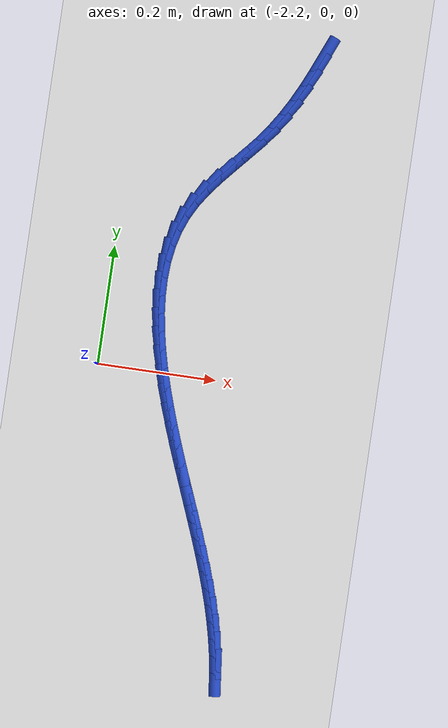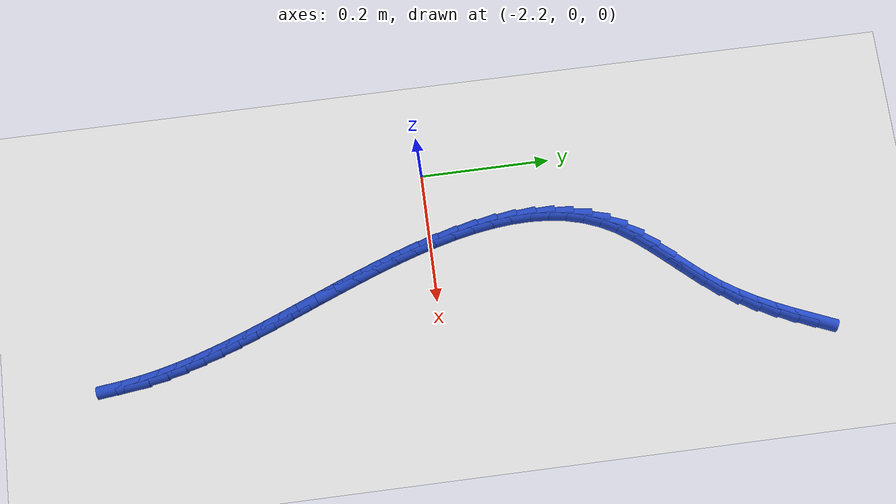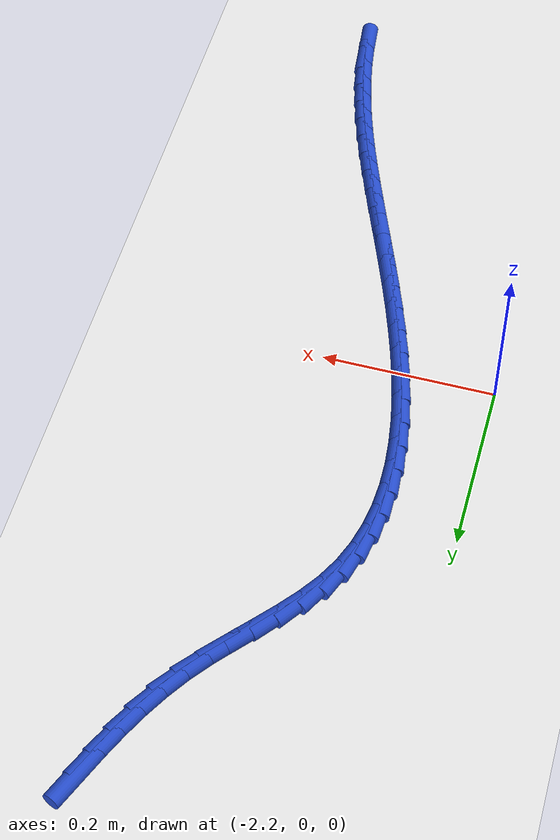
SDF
<sdf version="1.6">
 <world name="default">
  <model name="ground_plane">
   <static>1</static>
   <link name="link">
    <collision name="collision">
     <geometry><plane><normal>0 0 1</normal><size>100 100</size></plane></geometry>
     <surface><friction><ode><mu>100</mu><mu2>50</mu2></ode></friction></surface>
    </collision>
    <visual name="visual">
     <cast_shadows>0</cast_shadows>
     <geometry><plane><normal>0 0 1</normal><size>100 100</size></plane></geometry>
     <material>
      <script><uri>file://media/materials/scripts/gazebo.material</uri><name>Gazebo/WhiteGlow</name></script>
     </material>
    </visual>
   </link>
  </model>
  <model name="line">
   <link name="link_95">
    <pose>-1.899186423760416 0.5612984578605097 0.01 0 1.57 1.1766219724261486</pose>
    <collision name="collision">
     <geometry><cylinder><radius>0.01</radius><length>0.08</length></cylinder></geometry>
    </collision>
    <visual name="visual">
     <material>
      <script><name>Gazebo/Blue</name><uri>file://media/materials/scripts/gazebo.material</uri></script>
     </material>
     <geometry><cylinder><radius>0.01</radius><length>0.08</length></cylinder></geometry>
    </visual>
   </link>
   <link name="link_96">
    <pose>-1.910627675248279 0.5337916811733712 0.01 0 1.57 1.1466370961429673</pose>
    <collision name="collision">
     <geometry><cylinder><radius>0.01</radius><length>0.08</length></cylinder></geometry>
    </collision>
    <visual name="visual">
     <material>
      <script><name>Gazebo/Blue</name><uri>file://media/materials/scripts/gazebo.material</uri></script>
     </material>
     <geometry><cylinder><radius>0.01</radius><length>0.08</length></cylinder></geometry>
    </visual>
   </link>
   <link name="link_97">
    <pose>-1.9228658939906695 0.5066902267372222 0.01 0 1.57 1.1056456189767359</pose>
    <collision name="collision">
     <geometry><cylinder><radius>0.01</radius><length>0.08</length></cylinder></geometry>
    </collision>
    <visual name="visual">
     <material>
      <script><name>Gazebo/Blue</name><uri>file://media/materials/scripts/gazebo.material</uri></script>
     </material>
     <geometry><cylinder><radius>0.01</radius><length>0.08</length></cylinder></geometry>
    </visual>
   </link>
   <link name="link_98">
    <pose>-1.9361793073973819 0.48016315698920364 0.01 0 1.57 1.0536014409159482</pose>
    <collision name="collision">
     <geometry><cylinder><radius>0.01</radius><length>0.08</length></cylinder></geometry>
    </collision>
    <visual name="visual">
     <material>
      <script><name>Gazebo/Blue</name><uri>file://media/materials/scripts/gazebo.material</uri></script>
     </material>
     <geometry><cylinder><radius>0.01</radius><length>0.08</length></cylinder></geometry>
    </visual>
   </link>
   <link name="link_99">
    <pose>-1.9508461428782102 0.45437953436645706 0.01 0 1.57 0.9906917847899174</pose>
    <collision name="collision">
     <geometry><cylinder><radius>0.01</radius><length>0.08</length></cylinder></geometry>
    </collision>
    <visual name="visual">
     <material>
      <script><name>Gazebo/Blue</name><uri>file://media/materials/scripts/gazebo.material</uri></script>
     </material>
     <geometry><cylinder><radius>0.01</radius><length>0.08</length></cylinder></geometry>
    </visual>
   </link>
   <link name="link_100">
    <pose>-1.967144627842949 0.429508421306125 0.01 0 1.57 0.9204145990524364</pose>
    <collision name="collision">
     <geometry><cylinder><radius>0.01</radius><length>0.08</length></cylinder></geometry>
    </collision>
    <visual name="visual">
     <material>
      <script><name>Gazebo/Blue</name><uri>file://media/materials/scripts/gazebo.material</uri></script>
     </material>
     <geometry><cylinder><radius>0.01</radius><length>0.08</length></cylinder></geometry>
    </visual>
   </link>
   <link name="link_101">
    <pose>-1.9852731699350736 0.4056803751331991 0.01 0 1.57 0.868555260778277</pose>
    <collision name="collision">
     <geometry><cylinder><radius>0.01</radius><length>0.08</length></cylinder></geometry>
    </collision>
    <visual name="visual">
     <material>
      <script><name>Gazebo/Blue</name><uri>file://media/materials/scripts/gazebo.material</uri></script>
     </material>
     <geometry><cylinder><radius>0.01</radius><length>0.08</length></cylinder></geometry>
    </visual>
   </link>
   <link name="link_102">
    <pose>-2.0047282048209834 0.3826873213907298 0.01 0 1.57 0.8472326331899819</pose>
    <collision name="collision">
     <geometry><cylinder><radius>0.01</radius><length>0.08</length></cylinder></geometry>
    </collision>
    <visual name="visual">
     <material>
      <script><name>Gazebo/Blue</name><uri>file://media/materials/scripts/gazebo.material</uri></script>
     </material>
     <geometry><cylinder><radius>0.01</radius><length>0.08</length></cylinder></geometry>
    </visual>
   </link>
   <link name="link_103">
    <pose>-2.0246416333457162 0.3601453337641844 0.01 0 1.57 0.8561693579745446</pose>
    <collision name="collision">
     <geometry><cylinder><radius>0.01</radius><length>0.08</length></cylinder></geometry>
    </collision>
    <visual name="visual">
     <material>
      <script><name>Gazebo/Blue</name><uri>file://media/materials/scripts/gazebo.material</uri></script>
     </material>
     <geometry><cylinder><radius>0.01</radius><length>0.08</length></cylinder></geometry>
    </visual>
   </link>
   <link name="link_104">
    <pose>-2.0441422501063418 0.3376689874828005 0.01 0 1.57 0.896598721229193</pose>
    <collision name="collision">
     <geometry><cylinder><radius>0.01</radius><length>0.08</length></cylinder></geometry>
    </collision>
    <visual name="visual">
     <material>
      <script><name>Gazebo/Blue</name><uri>file://media/materials/scripts/gazebo.material</uri></script>
     </material>
     <geometry><cylinder><radius>0.01</radius><length>0.08</length></cylinder></geometry>
    </visual>
   </link>
   <link name="link_105">
    <pose>-2.062358849699933 0.3148728577758145 0.01 0 1.57 0.9712820767100098</pose>
    <collision name="collision">
     <geometry><cylinder><radius>0.01</radius><length>0.08</length></cylinder></geometry>
    </collision>
    <visual name="visual">
     <material>
      <script><name>Gazebo/Blue</name><uri>file://media/materials/scripts/gazebo.material</uri></script>
     </material>
     <geometry><cylinder><radius>0.01</radius><length>0.08</length></cylinder></geometry>
    </visual>
   </link>
   <link name="link_106">
    <pose>-2.078420226723561 0.29137151987246385 0.01 0 1.57 1.0814692834008968</pose>
    <collision name="collision">
     <geometry><cylinder><radius>0.01</radius><length>0.08</length></cylinder></geometry>
    </collision>
    <visual name="visual">
     <material>
      <script><name>Gazebo/Blue</name><uri>file://media/materials/scripts/gazebo.material</uri></script>
     </material>
     <geometry><cylinder><radius>0.01</radius><length>0.08</length></cylinder></geometry>
    </visual>
   </link>
   <link name="link_107">
    <pose>-2.0915040603044606 0.2668020496699052 0.01 0 1.57 1.2033799885313878</pose>
    <collision name="collision">
     <geometry><cylinder><radius>0.01</radius><length>0.08</length></cylinder></geometry>
    </collision>
    <visual name="visual">
     <material>
      <script><name>Gazebo/Blue</name><uri>file://media/materials/scripts/gazebo.material</uri></script>
     </material>
     <geometry><cylinder><radius>0.01</radius><length>0.08</length></cylinder></geometry>
    </visual>
   </link>
   <link name="link_108">
    <pose>-2.101402620724357 0.24108440829356903 0.01 0 1.57 1.317495490033172</pose>
    <collision name="collision">
     <geometry><cylinder><radius>0.01</radius><length>0.08</length></cylinder></geometry>
    </collision>
    <visual name="visual">
     <material>
      <script><name>Gazebo/Blue</name><uri>file://media/materials/scripts/gazebo.material</uri></script>
     </material>
     <geometry><cylinder><radius>0.01</radius><length>0.08</length></cylinder></geometry>
    </visual>
   </link>
   <link name="link_109">
    <pose>-2.1083278463666155 0.21433172253009608 0.01 0 1.57 1.421153237449367</pose>
    <collision name="collision">
     <geometry><cylinder><radius>0.01</radius><length>0.08</length></cylinder></geometry>
    </collision>
    <visual name="visual">
     <material>
      <script><name>Gazebo/Blue</name><uri>file://media/materials/scripts/gazebo.material</uri></script>
     </material>
     <geometry><cylinder><radius>0.01</radius><length>0.08</length></cylinder></geometry>
    </visual>
   </link>
   <link name="link_110">
    <pose>-2.1124997881623857 0.1866608532256145 0.01 0 1.57 1.513305037192407</pose>
    <collision name="collision">
     <geometry><cylinder><radius>0.01</radius><length>0.08</length></cylinder></geometry>
    </collision>
    <visual name="visual">
     <material>
      <script><name>Gazebo/Blue</name><uri>file://media/materials/scripts/gazebo.material</uri></script>
     </material>
     <geometry><cylinder><radius>0.01</radius><length>0.08</length></cylinder></geometry>
    </visual>
   </link>
   <link name="link_111">
    <pose>-2.114138497042818 0.15818866122625366 0.01 0 1.57 -1.547667718240837</pose>
    <collision name="collision">
     <geometry><cylinder><radius>0.01</radius><length>0.08</length></cylinder></geometry>
    </collision>
    <visual name="visual">
     <material>
      <script><name>Gazebo/Blue</name><uri>file://media/materials/scripts/gazebo.material</uri></script>
     </material>
     <geometry><cylinder><radius>0.01</radius><length>0.08</length></cylinder></geometry>
    </visual>
   </link>
   <link name="link_112">
    <pose>-2.113464023939061 0.12903200737814152 0.01 0 1.57 -1.4779547147992482</pose>
    <collision name="collision">
     <geometry><cylinder><radius>0.01</radius><length>0.08</length></cylinder></geometry>
    </collision>
    <visual name="visual">
     <material>
      <script><name>Gazebo/Blue</name><uri>file://media/materials/scripts/gazebo.material</uri></script>
     </material>
     <geometry><cylinder><radius>0.01</radius><length>0.08</length></cylinder></geometry>
    </visual>
   </link>
   <link name="link_113">
    <pose>-2.110696419782265 0.09930775252740766 0.01 0 1.57 -1.4181995299906758</pose>
    <collision name="collision">
     <geometry><cylinder><radius>0.01</radius><length>0.08</length></cylinder></geometry>
    </collision>
    <visual name="visual">
     <material>
      <script><name>Gazebo/Blue</name><uri>file://media/materials/scripts/gazebo.material</uri></script>
     </material>
     <geometry><cylinder><radius>0.01</radius><length>0.08</length></cylinder></geometry>
    </visual>
   </link>
   <link name="link_114">
    <pose>-2.1060557355035794 0.06913275752018008 0.01 0 1.57 -1.3673588825222784</pose>
    <collision name="collision">
     <geometry><cylinder><radius>0.01</radius><length>0.08</length></cylinder></geometry>
    </collision>
    <visual name="visual">
     <material>
      <script><name>Gazebo/Blue</name><uri>file://media/materials/scripts/gazebo.material</uri></script>
     </material>
     <geometry><cylinder><radius>0.01</radius><length>0.08</length></cylinder></geometry>
    </visual>
   </link>
   <link name="link_115">
    <pose>-2.0997620220341537 0.03862388320258825 0.01 0 1.57 -1.3244330379718854</pose>
    <collision name="collision">
     <geometry><cylinder><radius>0.01</radius><length>0.08</length></cylinder></geometry>
    </collision>
    <visual name="visual">
     <material>
      <script><name>Gazebo/Blue</name><uri>file://media/materials/scripts/gazebo.material</uri></script>
     </material>
     <geometry><cylinder><radius>0.01</radius><length>0.08</length></cylinder></geometry>
    </visual>
   </link>
   <link name="link_116">
    <pose>-2.092035330305138 0.007897990420760531 0.01 0 1.57 -1.2885369764983</pose>
    <collision name="collision">
     <geometry><cylinder><radius>0.01</radius><length>0.08</length></cylinder></geometry>
    </collision>
    <visual name="visual">
     <material>
      <script><name>Gazebo/Blue</name><uri>file://media/materials/scripts/gazebo.material</uri></script>
     </material>
     <geometry><cylinder><radius>0.01</radius><length>0.08</length></cylinder></geometry>
    </visual>
   </link>
   <link name="link_117">
    <pose>-2.0830957112476813 -0.02292805997917504 0.01 0 1.57 -1.258930713220231</pose>
    <collision name="collision">
     <geometry><cylinder><radius>0.01</radius><length>0.08</length></cylinder></geometry>
    </collision>
    <visual name="visual">
     <material>
      <script><name>Gazebo/Blue</name><uri>file://media/materials/scripts/gazebo.material</uri></script>
     </material>
     <geometry><cylinder><radius>0.01</radius><length>0.08</length></cylinder></geometry>
    </visual>
   </link>
   <link name="link_118">
    <pose>-2.0731632157929347 -0.05373740715108821 0.01 0 1.57 -1.2350279791334509</pose>
    <collision name="collision">
     <geometry><cylinder><radius>0.01</radius><length>0.08</length></cylinder></geometry>
    </collision>
    <visual name="visual">
     <material>
      <script><name>Gazebo/Blue</name><uri>file://media/materials/scripts/gazebo.material</uri></script>
     </material>
     <geometry><cylinder><radius>0.01</radius><length>0.08</length></cylinder></geometry>
    </visual>
   </link>
   <link name="link_119">
    <pose>-2.062457894872047 -0.08441319024885097 0.01 0 1.57 -1.2163957973037365</pose>
    <collision name="collision">
     <geometry><cylinder><radius>0.01</radius><length>0.08</length></cylinder></geometry>
    </collision>
    <visual name="visual">
     <material>
      <script><name>Gazebo/Blue</name><uri>file://media/materials/scripts/gazebo.material</uri></script>
     </material>
     <geometry><cylinder><radius>0.01</radius><length>0.08</length></cylinder></geometry>
    </visual>
   </link>
   <link name="link_120">
    <pose>-2.0511997994161675 -0.11483854842633456 0.01 0 1.57 -1.2027526963140587</pose>
    <collision name="collision">
     <geometry><cylinder><radius>0.01</radius><length>0.08</length></cylinder></geometry>
    </collision>
    <visual name="visual">
     <material>
      <script><name>Gazebo/Blue</name><uri>file://media/materials/scripts/gazebo.material</uri></script>
     </material>
     <geometry><cylinder><radius>0.01</radius><length>0.08</length></cylinder></geometry>
    </visual>
   </link>
   <link name="link_121">
    <pose>-2.0396089803564474 -0.14489662083741034 0.01 0 1.57 -1.1939704877283164</pose>
    <collision name="collision">
     <geometry><cylinder><radius>0.01</radius><length>0.08</length></cylinder></geometry>
    </collision>
    <visual name="visual">
     <material>
      <script><name>Gazebo/Blue</name><uri>file://media/materials/scripts/gazebo.material</uri></script>
     </material>
     <geometry><cylinder><radius>0.01</radius><length>0.08</length></cylinder></geometry>
    </visual>
   </link>
   <link name="link_122">
    <pose>-2.0279054886240346 -0.17447054663595013 0.01 0 1.57 -1.1899926028752237</pose>
    <collision name="collision">
     <geometry><cylinder><radius>0.01</radius><length>0.08</length></cylinder></geometry>
    </collision>
    <visual name="visual">
     <material>
      <script><name>Gazebo/Blue</name><uri>file://media/materials/scripts/gazebo.material</uri></script>
     </material>
     <geometry><cylinder><radius>0.01</radius><length>0.08</length></cylinder></geometry>
    </visual>
   </link>
   <link name="link_123">
    <pose>-2.016293867922254 -0.2034745850657554 0.01 0 1.57 -1.1905747810189469</pose>
    <collision name="collision">
     <geometry><cylinder><radius>0.01</radius><length>0.08</length></cylinder></geometry>
    </collision>
    <visual name="visual">
     <material>
      <script><name>Gazebo/Blue</name><uri>file://media/materials/scripts/gazebo.material</uri></script>
     </material>
     <geometry><cylinder><radius>0.01</radius><length>0.08</length></cylinder></geometry>
    </visual>
   </link>
   <link name="link_124">
    <pose>-2.0049039276071876 -0.23197297315088988 0.01 0 1.57 -1.1958208845571339</pose>
    <collision name="collision">
     <geometry><cylinder><radius>0.01</radius><length>0.08</length></cylinder></geometry>
    </collision>
    <visual name="visual">
     <material>
      <script><name>Gazebo/Blue</name><uri>file://media/materials/scripts/gazebo.material</uri></script>
     </material>
     <geometry><cylinder><radius>0.01</radius><length>0.08</length></cylinder></geometry>
    </visual>
   </link>
   <link name="link_125">
    <pose>-1.9938429921944707 -0.2600750707616529 0.01 0 1.57 -1.2059275213325535</pose>
    <collision name="collision">
     <geometry><cylinder><radius>0.01</radius><length>0.08</length></cylinder></geometry>
    </collision>
    <visual name="visual">
     <material>
      <script><name>Gazebo/Blue</name><uri>file://media/materials/scripts/gazebo.material</uri></script>
     </material>
     <geometry><cylinder><radius>0.01</radius><length>0.08</length></cylinder></geometry>
    </visual>
   </link>
   <link name="link_126">
    <pose>-1.9832183817272169 -0.2878902467438583 0.01 0 1.57 -1.2210375506258442</pose>
    <collision name="collision">
     <geometry><cylinder><radius>0.01</radius><length>0.08</length></cylinder></geometry>
    </collision>
    <visual name="visual">
     <material>
      <script><name>Gazebo/Blue</name><uri>file://media/materials/scripts/gazebo.material</uri></script>
     </material>
     <geometry><cylinder><radius>0.01</radius><length>0.08</length></cylinder></geometry>
    </visual>
   </link>
   <link name="link_127">
    <pose>-1.9731374162485398 -0.3155278699433174 0.01 0 1.57 -1.2412254930281073</pose>
    <collision name="collision">
     <geometry><cylinder><radius>0.01</radius><length>0.08</length></cylinder></geometry>
    </collision>
    <visual name="visual">
     <material>
      <script><name>Gazebo/Blue</name><uri>file://media/materials/scripts/gazebo.material</uri></script>
     </material>
     <geometry><cylinder><radius>0.01</radius><length>0.08</length></cylinder></geometry>
    </visual>
   </link>
   <link name="link_128">
    <pose>-1.9637074158015533 -0.3430973092058442 0.01 0 1.57 -1.2664802406440168</pose>
    <collision name="collision">
     <geometry><cylinder><radius>0.01</radius><length>0.08</length></cylinder></geometry>
    </collision>
    <visual name="visual">
     <material>
      <script><name>Gazebo/Blue</name><uri>file://media/materials/scripts/gazebo.material</uri></script>
     </material>
     <geometry><cylinder><radius>0.01</radius><length>0.08</length></cylinder></geometry>
    </visual>
   </link>
   <link name="link_129">
    <pose>-1.955035700429369 -0.37070793337725144 0.01 0 1.57 -1.2966863266135604</pose>
    <collision name="collision">
     <geometry><cylinder><radius>0.01</radius><length>0.08</length></cylinder></geometry>
    </collision>
    <visual name="visual">
     <material>
      <script><name>Gazebo/Blue</name><uri>file://media/materials/scripts/gazebo.material</uri></script>
     </material>
     <geometry><cylinder><radius>0.01</radius><length>0.08</length></cylinder></geometry>
    </visual>
   </link>
   <link name="link_130">
    <pose>-1.9472295901751018 -0.3984691113033522 0.01 0 1.57 -1.33160614695008</pose>
    <collision name="collision">
     <geometry><cylinder><radius>0.01</radius><length>0.08</length></cylinder></geometry>
    </collision>
    <visual name="visual">
     <material>
      <script><name>Gazebo/Blue</name><uri>file://media/materials/scripts/gazebo.material</uri></script>
     </material>
     <geometry><cylinder><radius>0.01</radius><length>0.08</length></cylinder></geometry>
    </visual>
   </link>
   <link name="link_131">
    <pose>-1.940396405081863 -0.4264902118299601 0.01 0 1.57 -1.3708666149167852</pose>
    <collision name="collision">
     <geometry><cylinder><radius>0.01</radius><length>0.08</length></cylinder></geometry>
    </collision>
    <visual name="visual">
     <material>
      <script><name>Gazebo/Blue</name><uri>file://media/materials/scripts/gazebo.material</uri></script>
     </material>
     <geometry><cylinder><radius>0.01</radius><length>0.08</length></cylinder></geometry>
    </visual>
   </link>
   <link name="link_132">
    <pose>-1.9346434651927678 -0.45488060380288686 0.01 0 1.57 -1.4139543938743504</pose>
    <collision name="collision">
     <geometry><cylinder><radius>0.01</radius><length>0.08</length></cylinder></geometry>
    </collision>
    <visual name="visual">
     <material>
      <script><name>Gazebo/Blue</name><uri>file://media/materials/scripts/gazebo.material</uri></script>
     </material>
     <geometry><cylinder><radius>0.01</radius><length>0.08</length></cylinder></geometry>
    </visual>
   </link>
   <link name="link_133">
    <pose>-1.930078090550929 -0.48374965606794623 0.01 0 1.57 -1.4602236010490879</pose>
    <collision name="collision">
     <geometry><cylinder><radius>0.01</radius><length>0.08</length></cylinder></geometry>
    </collision>
    <visual name="visual">
     <material>
      <script><name>Gazebo/Blue</name><uri>file://media/materials/scripts/gazebo.material</uri></script>
     </material>
     <geometry><cylinder><radius>0.01</radius><length>0.08</length></cylinder></geometry>
    </visual>
   </link>
  </model>
 </world>
</sdf>
